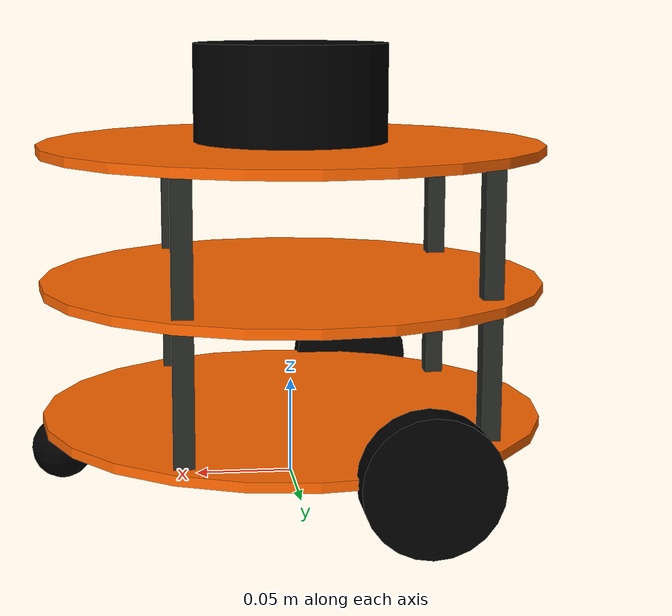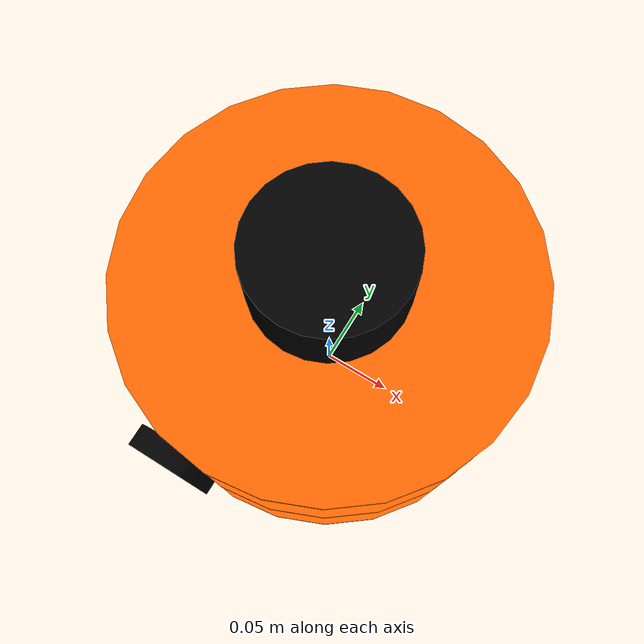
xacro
<?xml version="1.0"?>
<robot name="mrobot" xmlns:xacro="http://www.ros.org/wiki/xacro">

  <xacro:include filename="$(find mrobot_description)/urdf/mrobot.urdf.xacro" />
  <xacro:include filename="$(find mrobot_description)/urdf/rplidar.xacro" />

  <xacro:property name="rplidar_offset_x" value="0" />
  <xacro:property name="rplidar_offset_y" value="0" />
  <xacro:property name="rplidar_offset_z" value="0.028" />

  <!-- rplidar -->
  <joint name="rplidar_joint" type="fixed">
    <origin xyz="${rplidar_offset_x} ${rplidar_offset_y} ${rplidar_offset_z}" rpy="0 0 0" />
    <parent link="plate_2_link"/>
    <child link="laser_link"/>
  </joint>
  <xacro:rplidar prefix="laser"/>
</robot>

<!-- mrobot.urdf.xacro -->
<robot name="mrobot" xmlns:xacro="http://ros.org/wiki/xacro">
  <xacro:include filename="$(find mrobot_description)/urdf/common_properties.xacro"/>
  <xacro:include filename="$(find mrobot_description)/urdf/inertia.urdf.xacro"/>

  <xacro:property name="wheel_radius" value="0.033"/>
  <xacro:property name="wheel_height" value="0.017"/>
  <xacro:property name="wheel_mass"   value="0.1" />
  <xacro:property name="base_link_radius" value="0.13"/>
  <xacro:property name="base_link_length" value="0.005"/>
  <xacro:property name="base_mass"        value="0.5" />
  <xacro:property name="motor_x" value="-0.05"/>
  <xacro:property name="caster_radius"         value="0.016" />
  <xacro:property name="caster_joint_origin_x" value="-0.12" />
  <xacro:property name="caster_mass"           value="0.01" />
  <xacro:property name="plate_height" value="0.07"/>
  <xacro:property name="plate_mass"   value="0.05"/>
  <xacro:property name="standoff_x" value="0.12"/>
  <xacro:property name="standoff_y" value="0.10"/>

  <link name="base_footprint"/>

  <link name="base_link">
    <visual>
      <geometry>
        <cylinder radius="${base_link_radius}" length="${base_link_length}"/>
      </geometry>
      <origin xyz=" 0 0 0" rpy="0 0 0" />
      <material name="yellow" />
    </visual>
    <collision>
      <geometry>
        <cylinder radius="${base_link_radius}" length="${base_link_length}"/>
      </geometry>
      <origin xyz=" 0 0 0" rpy="0 0 0" />
    </collision>
    <inertial>
      <origin xyz="0 0 0" />
      <xacro:cylinder_inertia m="${base_mass}" r="${base_link_radius}" h="${base_link_length}"/>
    </inertial>
  </link>
  <joint name="base_footprint_joint" type="fixed">
    <origin xyz="0 0 ${wheel_radius}" rpy="0 0 0" />
    <parent link="base_footprint"/>
    <child link="base_link" />
  </joint>

  <xacro:macro name="wheel" params="prefix yreflect">
    <link name="${prefix}_wheel_link">
      <visual>
        <geometry>
          <cylinder radius="${wheel_radius}" length="${wheel_height}"/>
        </geometry>
        <origin xyz="0 0 0" rpy="${pi/2} 0 0"/>
        <material name="black" />
      </visual>
      <collision>
        <geometry>
          <cylinder radius="${wheel_radius}" length="${wheel_height}"/>
        </geometry>
        <origin xyz="0 0 0" rpy="${pi/2} 0 0"/>
      </collision>
      <inertial>
        <origin xyz="0 0 0" />
        <xacro:cylinder_inertia m="${wheel_mass}" r="${wheel_radius}" h="${wheel_height}"/>
      </inertial>
    </link>
    <joint name="${prefix}_wheel_joint" type="continuous">
      <origin xyz="${motor_x} ${base_link_radius*yreflect} 0" rpy="0 0 0"/>
      <parent link="base_link"/>
      <child link="${prefix}_wheel_link"/>
      <axis xyz="0 1 0"/>
    </joint>
  </xacro:macro>

  <xacro:wheel prefix="left" yreflect="1"/>
  <xacro:wheel prefix="right" yreflect="-1"/>

  <xacro:macro name="caster" params="fb xreflect">
    <link name="${fb}_caster_link">
      <visual>
        <geometry>
          <sphere radius="${caster_radius}" />
        </geometry>
        <origin xyz="0 0 0" rpy="0 0 0"/>
        <material name="black" />
      </visual>
      <collision>
        <geometry>
          <sphere radius="${caster_radius}" />
        </geometry>
        <origin xyz="0 0 0" rpy="0 0 0"/>
      </collision>
      <inertial>
        <origin xyz="0 0 0" />
        <xacro:sphere_inertia m="${caster_mass}" r="${caster_radius}"/>
      </inertial>
    </link>
    <joint name="{fb}_caster_joint" type="fixed">
      <origin xyz="${caster_joint_origin_x*xreflect} 0 ${-caster_radius}" rpy="0 0 0"/>
      <parent link="base_link"/>
      <child link="${fb}_caster_link"/>
    </joint>
  </xacro:macro>

  <xacro:caster fb="front" xreflect="-1"/>

  <xacro:macro name="mrobot_standoff_2in" params="parent number x_loc y_loc z_loc">
    <link name="standoff_2in_${number}_link">
      <visual>
        <geometry>
          <box size="0.01 0.01 0.07" />
        </geometry>
        <origin xyz=" 0 0 0 " rpy="0 0 0" />
        <material name="black2">
          <color rgba="0.16 0.17 0.15 0.9"/>
        </material>
      </visual>
      <collision>
        <geometry>
          <box size="0.01 0.01 0.07" />
        </geometry>
        <origin xyz=" 0 0 0 " rpy="0 0 0" />
      </collision>
      <inertial>
        <origin xyz="0 0 0" />
        <mass value="0.001" />
        <inertia ixx="0.0001" ixy="0.0" ixz="0.0"
                 iyy="0.0001" iyz="0.0"
                 izz="0.0001" />
      </inertial>
    </link>
    <joint name="standoff_2in_${number}_joint" type="fixed">
      <origin xyz="${x_loc} ${y_loc} ${z_loc}" rpy="0 0 0" />
      <parent link="${parent}"/>
      <child link="standoff_2in_${number}_link" />
    </joint>
  </xacro:macro>

  <xacro:macro name="plate" params="num parent">
    <link name="plate_${num}_link">
      <visual>
        <geometry>
          <cylinder radius="${base_link_radius}" length="${base_link_length}"/>
        </geometry>
        <origin xyz="0 0 0" rpy="0 0 0" />
        <material name="yellow"/>
      </visual>
      <collision>
        <geometry>
          <cylinder radius="${base_link_radius}" length="${base_link_length}"/>
        </geometry>
        <origin xyz="0 0 0" rpy="0 0 0" />
      </collision>
      <inertial>
        <origin xyz="0 0 0" />
        <xacro:cylinder_inertia m="0.1" r="${base_link_radius}" h="${base_link_length}"/>
      </inertial>
    </link>
    <joint name="plate_${num}_joint" type="fixed">
      <origin xyz="0 0 ${plate_height}" rpy="0 0 0" />
      <parent link="${parent}"/>
      <child link="plate_${num}_link"/>
    </joint>
  </xacro:macro>

  <xacro:mrobot_standoff_2in parent="base_link" number="1" x_loc="-${standoff_x/2 + 0.03}" y_loc="-${standoff_y - 0.03}" z_loc="${plate_height/2}"/>
  <xacro:mrobot_standoff_2in parent="base_link" number="2" x_loc="-${standoff_x/2 + 0.03}" y_loc="${standoff_y - 0.03}" z_loc="${plate_height/2}"/>
  <xacro:mrobot_standoff_2in parent="base_link" number="3" x_loc="${standoff_x/2}" y_loc="-${standoff_y}" z_loc="${plate_height/2}"/>
  <xacro:mrobot_standoff_2in parent="base_link" number="4" x_loc="${standoff_x/2}" y_loc="${standoff_y}" z_loc="${plate_height/2}"/>

  <xacro:plate num="1" parent="base_link"/>

  <xacro:mrobot_standoff_2in parent="standoff_2in_1_link" number="5" x_loc="0" y_loc="0" z_loc="${plate_height}"/>
  <xacro:mrobot_standoff_2in parent="standoff_2in_2_link" number="6" x_loc="0" y_loc="0" z_loc="${plate_height}"/>
  <xacro:mrobot_standoff_2in parent="standoff_2in_3_link" number="7" x_loc="0" y_loc="0" z_loc="${plate_height}"/>
  <xacro:mrobot_standoff_2in parent="standoff_2in_4_link" number="8" x_loc="0" y_loc="0" z_loc="${plate_height}"/>

  <xacro:plate num="2" parent="plate_1_link"/>

  <xacro:include filename="$(find mrobot_description)/urdf/mrobot.transmission.xacro"/>

  <xacro:include filename="$(find mrobot_description)/urdf/mrobot.gazebo.xacro"/>
</robot>

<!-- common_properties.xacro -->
<robot xmlns:xacro="http://ros.org/wiki/xacro">

  <!-- Init colour -->

  <material name="black">
      <color rgba="0.0 0.0 0.0 1.0"/>
  </material>

  <material name="white">
    <color rgba="1.0 1.0 1.0 1.0"/>
  </material>

  <material name="gray">
    <color rgba="0.75 0.75 0.75 1.0"/>
  </material>

  <material name="dark">
    <color rgba="0.3 0.3 0.3 1.0"/>
  </material>

  <material name="light_black">
    <color rgba="0.4 0.4 0.4 1.0"/>
  </material>

  <material name="red">
    <color rgba="0.8 0.0 0.0 1.0"/>
  </material>

  <material name="green">
    <color rgba="0.0 0.8 0.0 1.0"/>
  </material>

  <material name="blue">
    <color rgba="0.0 0.0 0.8 1.0"/>
  </material>

  <material name="yellow">
    <color rgba="1.0 0.4 0.0 1.0"/>
  </material>

  <material name="orange">
    <color rgba="${255/255} ${108/255} ${10/255} 1.0"/>
  </material>

  <material name="brown">
    <color rgba="${222/255} ${207/255} ${195/255} 1.0"/>
  </material>
</robot>

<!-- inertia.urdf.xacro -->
<robot name="inertial" xmlns:xacro="http://wiki.ros.org/xacro">
  <!-- Source: https://en.wikipedia.org/wiki/List_of_moments_of_inertia -->

  <!-- TODO Solid sphere of radius r and mass m -->
  <xacro:macro name="sphere_inertia" params="m r">
    <mass value="${m}"/>
    <inertia ixx="${(2*r*r*m)/5}" ixy = "0.0" ixz = "0.0"
      iyy="${(2*r*r*m)/5}" iyz = "0.0"
      izz="${(2*r*r*m)/5}"/>
  </xacro:macro>

  <!-- TODO Hollow sphere of radius r and mass m-->
  <xacro:macro name="hollow_sphere_inertia" params="m r">
    <mass value="${m}"/>
    <inertia ixx="${(2*r*r*m)/3}" ixy = "0.0" ixz = "0.0"
             iyy="${(2*r*r*m)/3}" iyz = "0.0"
             izz="${(2*r*r*m)/3}"/>
  </xacro:macro>

  <!-- TODO Solid cuboid of length l, width w, height h, and mass m -->
  <xacro:macro name="box_inertia" params="m l w h">
    <mass value="${m}"/>
    <inertia ixx="${(m*(w*w+h*h))/12}" ixy = "0.0" ixz = "0.0"
             iyy="${(m*(h*h+l*l))/12}" iyz = "0.0"
             izz="${(m*(l*l+w*w))/12}"/>
  </xacro:macro>

  <!-- TODO Solid cylinder of radius r, height h and mass m -->
  <xacro:macro name="cylinder_inertia" params="m r h">
    <mass value="${m}"/>
    <inertia ixx="${m*(3*r*r+h*h)/12}" ixy = "0.0" ixz = "0.0"
             iyy="${m*(3*r*r+h*h)/12}" iyz = "0.0"
             izz="${m*r*r/2}"/>
  </xacro:macro>
</robot>

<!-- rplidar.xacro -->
<robot name="laser" xmlns:xacro="http://www.ros.org/wiki/xacro">

  <xacro:macro name="rplidar" params="prefix:=laser">
    <link name="${prefix}_link">
      <visual>
        <origin xyz=" 0 0 0 " rpy="0 0 0" />
        <geometry>
          <cylinder length="0.05" radius="0.05"/>
        </geometry>
        <material name="black"/>
      </visual>
      <collision>
        <origin xyz="0.0 0.0 0.0" rpy="0 0 0" />
        <geometry>
          <cylinder length="0.06" radius="0.05"/>
        </geometry>
      </collision>
      <inertial>
        <mass value="0.1" />
        <origin xyz="0 0 0" />
        <inertia ixx="0.01" ixy="0.0" ixz="0.0"
          iyy="0.01" iyz="0.0"
          izz="0.01" />
      </inertial>
    </link>

    <gazebo reference="${prefix}_link">
      <sensor type="ray" name="rplidar">
        <plugin name="gazebo_rplidar" filename="libgazebo_ros_laser.so">
          <topicName>/scan</topicName>
          <frameName>laser_link</frameName>
        </plugin>
        <pose>0 0 0 0 0 0</pose>
        <visualize>false</visualize>
        <update_rate>5.5</update_rate>
        <ray>
          <scan>
            <horizontal>
              <samples>360</samples>
              <resolution>1</resolution>
              <min_angle>-3</min_angle>
              <max_angle>3</max_angle>
            </horizontal>
          </scan>
          <range>
            <min>0.10</min>
            <max>6.0</max>
            <resolution>0.01</resolution>
          </range>
          <noise>
            <type>gaussian</type>
            <mean>0.0</mean>
            <stddev>0.01</stddev>
          </noise>
        </ray>
      </sensor>
    </gazebo>

  </xacro:macro>
</robot>
